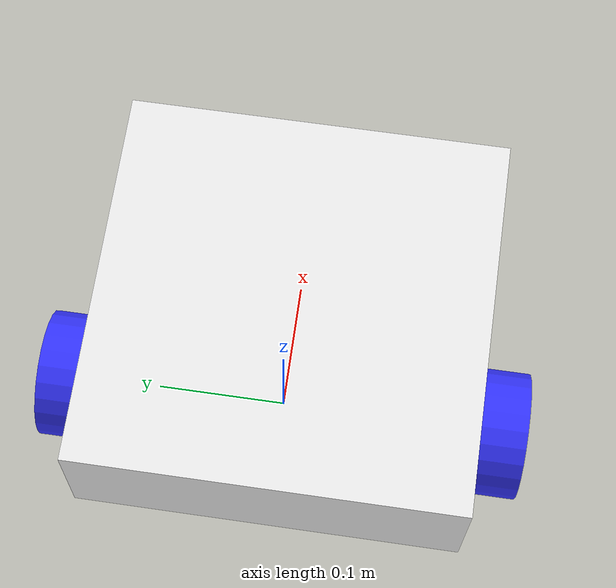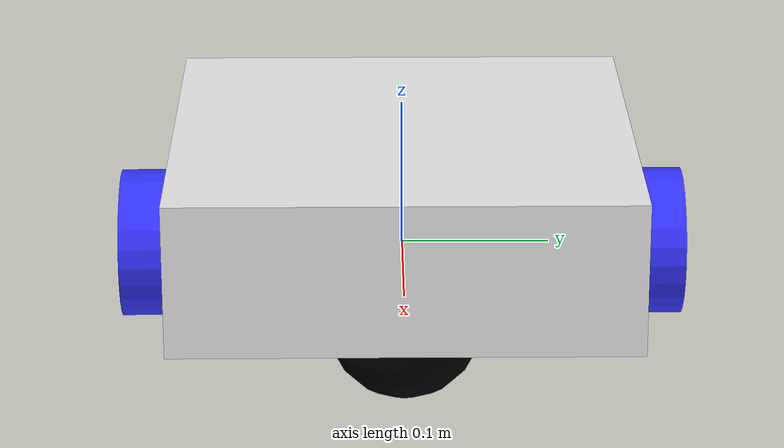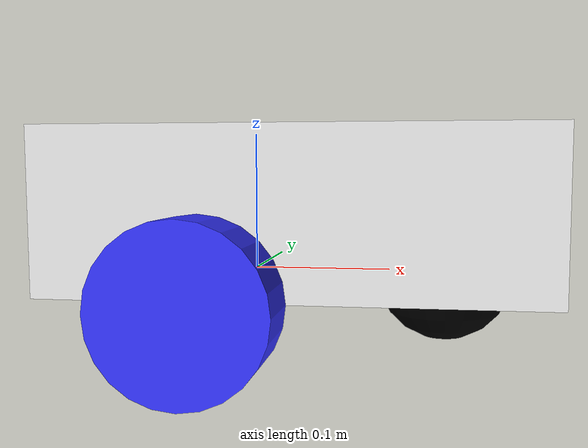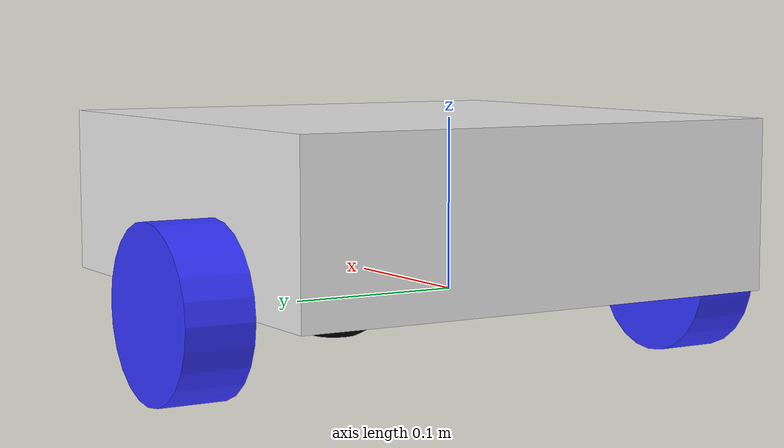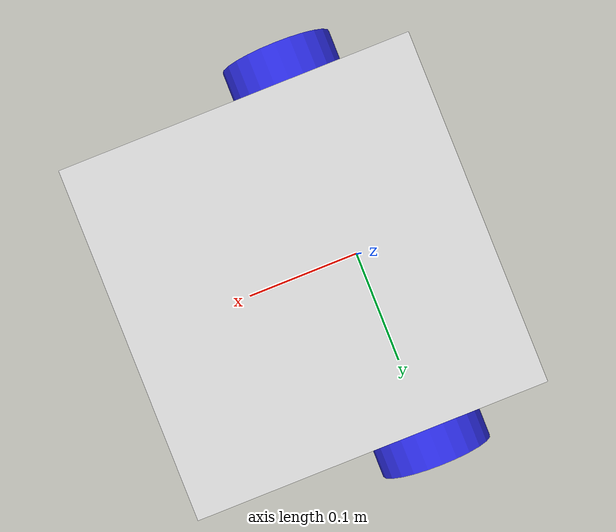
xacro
<?xml version="1.0"?>
<robot xmlns:xacro="http://www.ros.org/wiki/xacro"  name="robot">

    <xacro:include filename="colors.xacro" />
    <xacro:include filename="inertial_macros.xacro" />

<!-- BASE LINK -->
    <link name="base_link">
    </link>

<!-- CHASSIS JOINT AND LINK -->
    <joint name="chassis_joint" type="fixed">
        <parent link="base_link"/>
        <child link="chassis"/>
        <origin xyz="-0.1 0 0"/>
    </joint>

    <link name="chassis">
        <visual>
            <origin xyz="0.15 0 0.05" rpy="0 0 0"/>
            <geometry>
                <box size="0.3 0.3 0.1"/>
            </geometry>
        </visual>
        <collision>
            <origin xyz="0.15 0 0.05" rpy="0 0 0"/>
            <geometry>
                <box size="0.3 0.3 0.1"/>
            </geometry>
        </collision>
        <xacro:inertial_box mass="0.5" x="0.3" y="0.3" z="0.1">
            <origin xyz="0.15 0 0.05" rpy="0 0 0"/>
        </xacro:inertial_box>
    </link>

    <gazebo reference="chassis">
        <material> Gazebo/White </material>
    </gazebo>

<!-- LEFT WHEEL JOINT AND LINK -->
    <joint name="left_wheel_joint" type="continuous">
        <parent link="base_link"/>
        <child link="left_wheel"/>
        <origin xyz="0 0.17 0" rpy="-${pi/2} 0 0"/>
        <axis xyz="0 0 1"/>
    </joint>

    <link name="left_wheel">
        <visual>
            <origin xyz="0 0 0" rpy="0 0 0"/>
            <geometry>
                <cylinder length="0.04" radius="0.05" />
            </geometry>
            <material name="blue"/>
        </visual>
        <collision>
            <geometry>
                <cylinder length="0.04" radius="0.05" />
            </geometry>
        </collision>
        <xacro:inertial_cylinder mass="0.1" length="0.04" radius="0.05">
            <origin xyz="0 0 0" rpy="0 0 0"/>
        </xacro:inertial_cylinder>
    </link>

    <gazebo reference="left_wheel">
        <material>Gazebo/Blue</material>
    </gazebo>

<!-- RIGHT WHEEL JOINT AND LINK -->
    <joint name="right_wheel_joint" type="continuous">
        <parent link="base_link"/>
        <child link="right_wheel"/>
        <origin xyz="0 -0.17 0" rpy="${pi/2} 0 0"/>
        <axis xyz="0 0 -1"/>
    </joint>

    <link name="right_wheel">
        <visual>
            <origin xyz="0 0 0" rpy="0 0 0"/>
            <geometry>
                <cylinder length="0.04" radius="0.05" />
            </geometry>
            <material name="blue"/>
        </visual>
        <collision>
            <geometry>
                <cylinder length="0.04" radius="0.05" />
            </geometry>
        </collision>
        <xacro:inertial_cylinder mass="0.1" length="0.04" radius="0.05">
            <origin xyz="0 0 0" rpy="0 0 0"/>
        </xacro:inertial_cylinder>
    </link>

    <gazebo reference="right_wheel">
        <material>Gazebo/Blue</material>
    </gazebo>

<!-- CASTER WHEEL JOINT AND LINK -->
    <joint name="caster_wheel_joint" type="fixed">
        <parent link="chassis"/>
        <child link="caster_wheel"/>
        <origin xyz="0.24 0 0" rpy="0 0 0"/>
    </joint>

    <link name="caster_wheel">
        <visual>
            <geometry>
                <sphere radius="0.05" />
            </geometry>
            <material name="black"/>
        </visual>
        <collision>
            <geometry>
                <sphere radius="0.05" />
            </geometry>
        </collision>
        <xacro:inertial_sphere mass="0.1" radius="0.05">
            <origin xyz="0 0 0" rpy="0 0 0"/>
        </xacro:inertial_sphere>
    </link>

    <gazebo reference="caster_wheel">
        <material>Gazebo/Blue</material>
        <mu1 value = "0.001" />
        <mu2 value = "0.001" />
    </gazebo>

</robot>

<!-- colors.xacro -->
<robot xmlns:xacro="http://www.ros.org/wiki/xacro" >

    <material name="white">
        <color rgba="1 1 1 1"/>
    </material>

    <material name="orange">
        <color rgba="1 0.3 0.1 1"/>
    </material>

    <material name="blue">
        <color rgba="0.2 0.2 1 1"/>
    </material>

    <material name="black">
        <color rgba="0 0 0 1"/>
    </material>

</robot>
